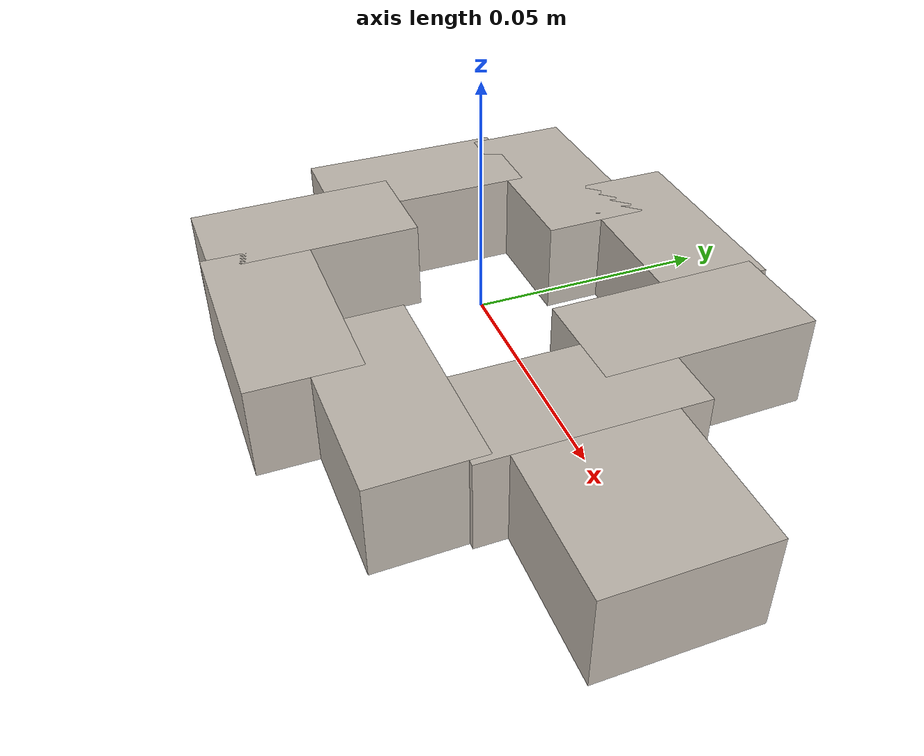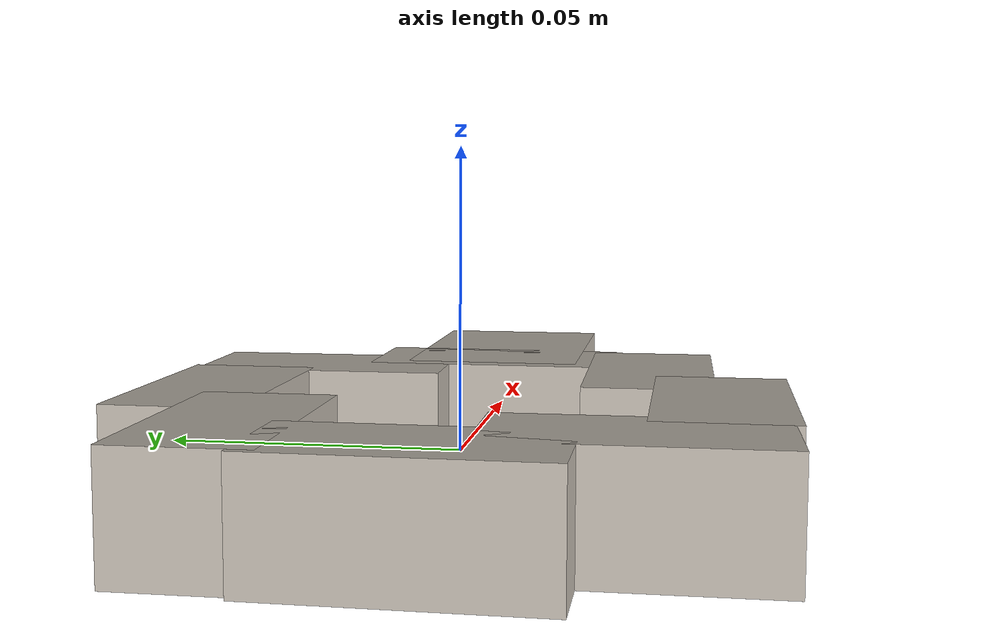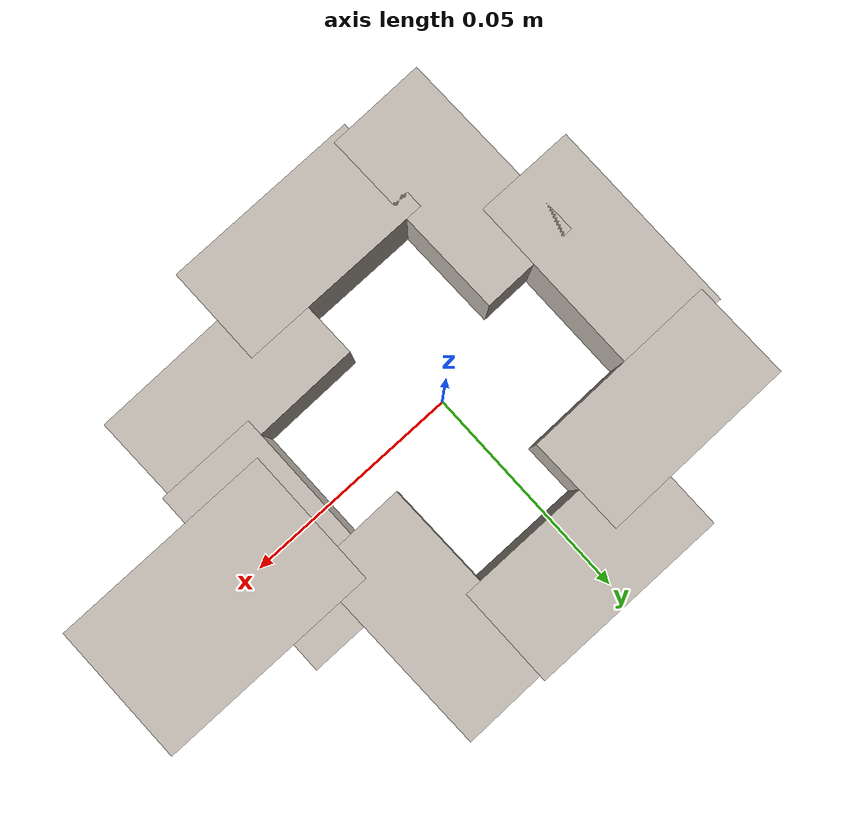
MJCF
<mujoco model="round-nut">
  <!-- Note: Texture / material is defined in the PegsArena xml file! -->
  <asset>
    <texture file="../textures/steel-scratched.png" type="cube" name="steel-metal"/>
    <material name="smetal" reflectance="1.0" shininess="1.0" specular="1.0" texrepeat="1 1" texture="steel-metal" texuniform="true"/>
  </asset>
  <worldbody>
    <body>
      <body name="collision">
        <geom pos="-0.04245 0 0.0" size="0.01125 0.0225 0.01" type="box" solimp="0.998 0.998 0.001" solref="0.02 1" density="100" friction="0.95 0.3 0.1" group="1" condim="4" material="smetal" />
        <geom pos="0.04245 0 0.0" size="0.01125 0.0225 0.01" type="box" solimp="0.998 0.998 0.001" solref="0.02 1" density="100" friction="0.95 0.3 0.1" group="1" condim="4" material="smetal" />
        <geom pos="0 -0.04245 0.0" size="0.0225 0.01125 0.01" type="box" solimp="0.998 0.998 0.001" solref="0.02 1" density="100" friction="0.95 0.3 0.1" group="1" condim="4" material="smetal" />
        <geom pos="0 0.04245 0.0" size="0.0225 0.01125 0.01" type="box" solimp="0.998 0.998 0.001" solref="0.02 1" density="100" friction="0.95 0.3 0.1" group="1" condim="4" material="smetal" />
        <geom pos="-0.03 -0.03 0.0" size="0.01125 0.0225 0.01" axisangle='0 0 1 0.785398' type="box" solimp="0.998 0.998 0.001" solref="0.02 1" density="100" friction="0.95 0.3 0.1" group="1" condim="4" material="smetal" />
        <geom pos="0.03 0.03 0.0" size="0.01125 0.0225 0.01" axisangle='0 0 1 0.785398' type="box" solimp="0.998 0.998 0.001" solref="0.02 1" density="100" friction="0.95 0.3 0.1" group="1" condim="4" material="smetal" />
        <geom pos="0.03 -0.03 0.0" size="0.0225 0.01125 0.01" axisangle='0 0 1 0.785398' type="box" solimp="0.998 0.998 0.001" solref="0.02 1" density="100" friction="0.95 0.3 0.1" group="1" condim="4" material="smetal" />
        <geom pos="-0.03 0.03 0.0" size="0.0225 0.01125 0.01" axisangle='0 0 1 0.785398' type="box" solimp="0.998 0.998 0.001" solref="0.02 1" density="100" friction="0.95 0.3 0.1" group="1" condim="4" material="smetal" />
        <geom pos="0.06 0 0.0" size="0.02525 0.015875 0.01" type="box" solimp="0.998 0.998 0.001" solref="0.02 1" density="100" friction="0.95 0.3 0.1" group="1" condim="4" material="smetal" />
      </body>
      <site rgba="0 0 0 0" size="0.005" pos="0 0 -0.05" name="bottom_site"/>
      <site rgba="0 0 0 0" size="0.005" pos="0 0 0.025" name="top_site"/>
      <site rgba="0 0 0 0" size="0.005" pos="0.11 0.05 0" name="horizontal_radius_site"/>
    </body>
  </worldbody>
</mujoco>
